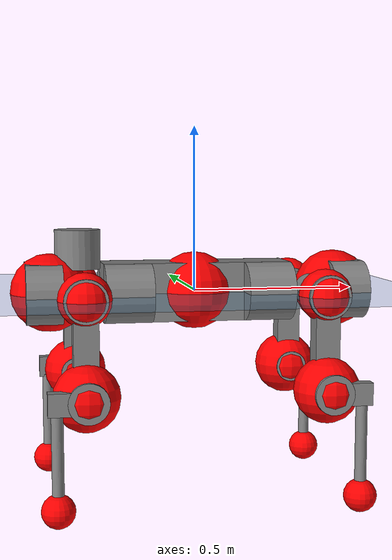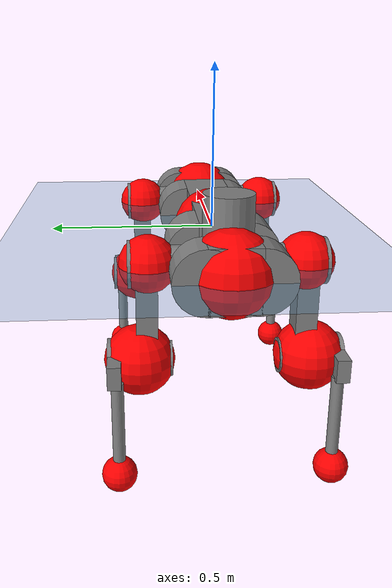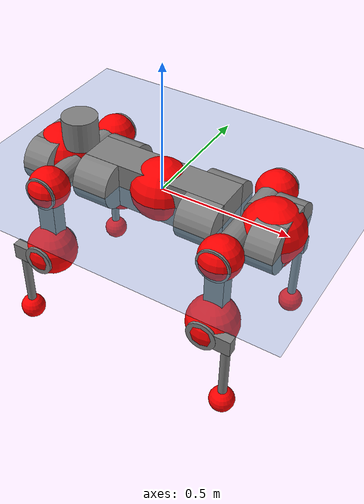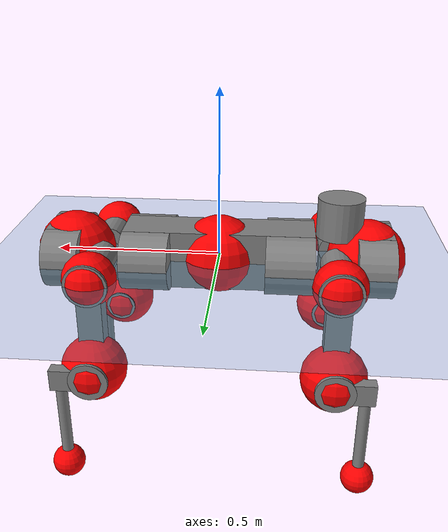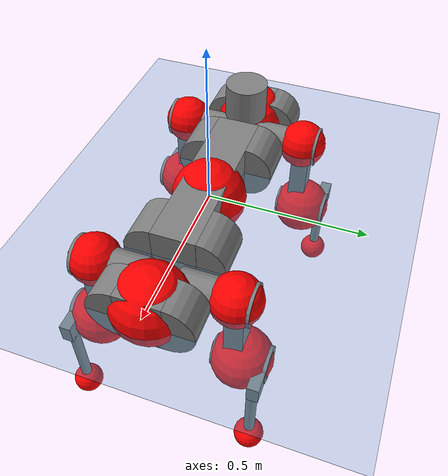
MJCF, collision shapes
<mujoco model="anymal_c">
  <compiler angle="radian" assetdir="assets" balanceinertia="true" inertiafromgeom="false"/>

  <option timestep="0.005" density="1.2" viscosity="2e-05"/>

  <size nkey="1"/>

  <visual>
    <quality shadowsize="8192"/>
    <map shadowclip="0.5"/>
  </visual>

  <default>
    <default class="/">
      <material specular="0" shininess="0.25"/>
      <geom contype="0" conaffinity="0" group="1" solref="-1000 -80"/>
      <site size="0.01 0.005 0.005" group="5"/>
      <general forcelimited="true" forcerange="-80 80" biastype="affine" gainprm="80" biasprm="0 -80 -2"/>
      <default class="anymal_c">
        <joint armature="0.01" damping="0.01" frictionloss="0.1"/>
        <default class="visual">
          <geom type="mesh" group="2"/>
          <default class="visual_zflip"/>
        </default>
        <default class="collision">
          <geom type="cylinder" group="3"/>
          <default class="foot">
            <geom size="0.03 0 0" type="sphere" condim="6" priority="1" friction="0.8 0.02 0.01" solimp="0.015 1 0.03"/>
          </default>
        </default>
      </default>
      <default class="reward_collision_sphere">
        <geom group="5" rgba="1 0 0 1"/>
      </default>
    </default>
  </default>

  <asset>
    <texture type="skybox" colorspace="auto" name="//unnamed_texture_0" builtin="gradient" rgb1="0.95 0.95 0.95" rgb2="0.95 0.95 0.95" width="100" height="600"/>
    <texture type="2d" colorspace="auto" name="texplane" builtin="checker" rgb1="0.345 0.575 0.748" rgb2="0.345 0.575 0.748" markrgb="1 1 1" width="512" height="512"/>
    <texture type="2d" colorspace="linear" name="base" file="base.png"/>
    <texture type="2d" colorspace="linear" name="top_shell" file="top_shell.png"/>
    <texture type="2d" colorspace="linear" name="bottom_shell" file="bottom_shell.png"/>
    <texture type="2d" colorspace="linear" name="remote" file="remote.png"/>
    <texture type="2d" colorspace="linear" name="hatch" file="hatch.png"/>
    <texture type="2d" colorspace="linear" name="handle" file="handle.png"/>
    <texture type="2d" colorspace="linear" name="face" file="face.png"/>
    <texture type="2d" colorspace="linear" name="battery" file="battery.png"/>
    <texture type="2d" colorspace="linear" name="lidar_cage" file="lidar_cage.png"/>
    <texture type="2d" colorspace="linear" name="depth_camera" file="depth_camera.png"/>
    <texture type="2d" colorspace="linear" name="wide_angle_camera" file="wide_angle_camera.png"/>
    <texture type="2d" colorspace="linear" name="lidar" file="lidar.png"/>
    <texture type="2d" colorspace="linear" name="drive" file="drive.png"/>
    <texture type="2d" colorspace="linear" name="hip_l" file="hip_l.png"/>
    <texture type="2d" colorspace="linear" name="shank_l" file="shank_l.png"/>
    <texture type="2d" colorspace="linear" name="foot" file="foot.png"/>
    <texture type="2d" colorspace="linear" name="thigh" file="thigh.png"/>
    <texture type="2d" colorspace="linear" name="shank_r" file="shank_r.png"/>
    <texture type="2d" colorspace="linear" name="hip_r" file="hip_r.png"/>
    <material name="MatPlane" class="/" texture="texplane" texuniform="true" texrepeat="2 2" specular="0.9" shininess="0.5"/>
    <material name="black_plastic" class="/" rgba="0.007 0.007 0.007 1"/>
    <material name="green" class="/" rgba="0.052 0.178 0.033 1"/>
    <material name="red" class="/" rgba="0.178 0.006 0.005 1"/>
    <material name="yellow" class="/" rgba="0.178 0.119 0.006 1"/>
    <material name="lwl" class="/" rgba="0.8 0.8 0.8 1"/>
    <material name="base" class="/" texture="base"/>
    <material name="top_shell" class="/" texture="top_shell"/>
    <material name="bottom_shell" class="/" texture="bottom_shell"/>
    <material name="hip_l" class="/" texture="hip_l"/>
    <material name="thigh" class="/" texture="thigh"/>
    <material name="shank_l" class="/" texture="shank_l"/>
    <material name="foot" class="/" texture="foot"/>
    <material name="hip_r" class="/" texture="hip_r"/>
    <material name="shank" class="/" texture="shank_r"/>
    <material name="hatch" class="/" texture="hatch"/>
    <material name="remote" class="/" texture="remote"/>
    <material name="handle" class="/" texture="handle"/>
    <material name="face" class="/" texture="face"/>
    <material name="depth_camera" class="/" texture="depth_camera"/>
    <material name="wide_angle_camera" class="/" texture="wide_angle_camera"/>
    <material name="battery" class="/" texture="battery"/>
    <material name="lidar_cage" class="/" texture="lidar_cage"/>
    <material name="lidar" class="/" texture="lidar"/>
    <material name="drive" class="/" texture="drive"/>
    <mesh name="base_0" class="/" file="base_0.obj"/>
    <mesh name="base_1" class="/" file="base_1.obj"/>
    <mesh name="base_2" class="/" file="base_2.obj"/>
    <mesh name="base_3" class="/" file="base_3.obj"/>
    <mesh name="base_4" class="/" file="base_4.obj"/>
    <mesh name="base_5" class="/" file="base_5.obj"/>
    <mesh name="top_shell" class="/" file="top_shell.obj"/>
    <mesh name="bottom_shell" class="/" file="bottom_shell.obj"/>
    <mesh name="remote" class="/" file="remote.obj"/>
    <mesh name="handle" class="/" file="handle.obj"/>
    <mesh name="face" class="/" file="face.obj"/>
    <mesh name="wide_angle_camera" class="/" file="wide_angle_camera.obj"/>
    <mesh name="depth_camera" class="/" file="depth_camera.obj"/>
    <mesh name="battery" class="/" file="battery.obj"/>
    <mesh name="lidar_cage" class="/" file="lidar_cage.obj"/>
    <mesh name="lidar" class="/" file="lidar.obj"/>
    <mesh name="drive" class="/" file="drive.obj"/>
    <mesh name="hip_l" class="/" file="hip_l.obj"/>
    <mesh name="thigh" class="/" file="thigh.obj"/>
    <mesh name="shank_l" class="/" file="shank_l.obj"/>
    <mesh name="foot" class="/" file="foot.obj"/>
    <mesh name="hip_r" class="/" file="hip_r.obj"/>
    <mesh name="hatch" class="/" file="hatch.obj"/>
    <mesh name="shank_r" class="/" file="shank_r.obj"/>
  </asset>

  <worldbody>
    <geom name="floor" class="/" size="100 100 0.125" type="plane" group="0" material="MatPlane"/>
    <light name="toplight_shadow" class="/" pos="0 0 5" dir="0.0990148 0.0990148 -0.990148" type="directional" ambient="0.04 0.04 0.04" diffuse="0.55 0.55 0.55" specular="0.12 0.12 0.12"/>
    <light name="toplight_fill" class="/" pos="0 0 5" dir="0.0990148 0.0990148 -0.990148" type="directional" castshadow="false" ambient="0.04 0.04 0.04" diffuse="0.3 0.3 0.3" specular="0.08 0.08 0.08"/>
    <body name="trunk" childclass="anymal_c" pos="-0.000263999 -7.95427e-05 0.00086207" quat="1 -4.11659e-05 3.37828e-05 3.07342e-05">
      <inertial pos="0.00294699 0.000146654 0.0482369" quat="0.499398 0.501268 0.500293 0.499038" mass="17.868" diaginertia="0.582533 0.608045 0.18871"/>
      <joint name="//unnamed_joint_0" type="free" armature="0" damping="0" frictionloss="0"/>
      <geom name="//unnamed_geom_1" class="visual" material="green" mesh="base_0"/>
      <geom name="//unnamed_geom_2" class="visual" material="yellow" mesh="base_1"/>
      <geom name="//unnamed_geom_3" class="visual" material="red" mesh="base_2"/>
      <geom name="//unnamed_geom_4" class="visual" material="black_plastic" mesh="base_3"/>
      <geom name="//unnamed_geom_5" class="visual" material="lwl" mesh="base_4"/>
      <geom name="//unnamed_geom_6" class="visual" material="base" mesh="base_5"/>
      <geom name="trunk_1" class="collision" size="0.285936 0.0690191 0.0887389" type="box"/>
      <geom name="trunk_2" class="collision" size="0.0887389 0.0714841" pos="0.213978 0.0698569 0" quat="0.707107 0 0.707107 0"/>
      <geom name="trunk_3" class="collision" size="0.0887389 0.0714841" pos="-0.213978 0.0698569 0" quat="0.707107 0 0.707107 0"/>
      <geom name="trunk_4" class="collision" size="0.0887389 0.0714841" pos="0.213978 -0.0698569 0" quat="0.707107 0 0.707107 0"/>
      <geom name="trunk_5" class="collision" size="0.0887389 0.0714841" pos="-0.213978 -0.0698569 0" quat="0.707107 0 0.707107 0"/>
      <geom name="//unnamed_geom_12" class="visual" material="top_shell" mesh="top_shell"/>
      <geom name="//unnamed_geom_13" class="visual" material="bottom_shell" mesh="bottom_shell"/>
      <geom name="//unnamed_geom_14" class="visual" material="remote" mesh="remote"/>
      <geom name="//unnamed_geom_15" class="visual" material="handle" mesh="handle"/>
      <geom name="//unnamed_geom_16" class="visual" pos="0.407788 0 0" quat="1 0 0 0" material="face" mesh="face"/>
      <geom name="trunk_6" class="collision" size="0.0542293 0.0690191 0.0887389" pos="0.461897 0 0" type="box"/>
      <geom name="//unnamed_geom_18" class="collision" size="0.0887389 0.0542293" pos="0.461897 0.0698569 0" quat="0.707107 0 0.707107 0"/>
      <geom name="//unnamed_geom_19" class="collision" size="0.0887389 0.0542293" pos="0.461897 -0.0698569 0" quat="0.707107 0 0.707107 0"/>
      <geom name="//unnamed_geom_20" class="visual" pos="0.454174 0 -0.0284473" quat="0.965926 0 0.258819 0" material="depth_camera" mesh="depth_camera"/>
      <geom name="//unnamed_geom_21" class="visual" pos="0.504693 0 0.0146137" material="wide_angle_camera" mesh="wide_angle_camera"/>
      <geom name="//unnamed_geom_22" class="visual_zflip" pos="-0.407788 0 0" quat="0 0 0 1" material="face" mesh="face"/>
      <geom name="trunk_7" class="collision" size="0.0542293 0.0690191 0.0887389" pos="-0.461897 0 0" quat="0 0 0 1" type="box"/>
      <geom name="//unnamed_geom_24" class="collision" size="0.0887389 0.0542293" pos="-0.461897 -0.0698569 0" quat="0 -0.707107 0 0.707107"/>
      <geom name="//unnamed_geom_25" class="collision" size="0.0887389 0.0542293" pos="-0.461897 0.0698569 0" quat="0 -0.707107 0 0.707107"/>
      <geom name="//unnamed_geom_26" class="visual" pos="-0.454174 0 -0.0284473" quat="0 -0.258819 0 0.965926" material="depth_camera" mesh="depth_camera"/>
      <geom name="//unnamed_geom_27" class="visual_zflip" pos="-0.504693 0 0.0146137" quat="0 0 0 1" material="wide_angle_camera" mesh="wide_angle_camera"/>
      <geom name="//unnamed_geom_28" class="visual" material="battery" mesh="battery"/>
      <geom name="//unnamed_geom_29" class="visual" pos="0 0.076489 0.0284164" quat="0.683013 -0.183013 0.183013 0.683013" material="depth_camera" mesh="depth_camera"/>
      <geom name="//unnamed_geom_30" class="visual" pos="0 -0.076489 0.0284164" quat="0.683013 0.183013 0.183013 -0.683013" material="depth_camera" mesh="depth_camera"/>
      <geom name="//unnamed_geom_31" class="visual" pos="-0.358106 0 0.0717508" quat="1 0 0 0" material="lidar_cage" mesh="lidar_cage"/>
      <geom name="trunk_8" class="collision" size="0.0690191 0.0591593" pos="-0.358106 0 0.130323"/>
      <geom name="//unnamed_geom_33" class="visual" pos="-0.358106 5.55881e-06 0.138816" quat="0.707107 0 0 -0.707107" material="lidar" mesh="lidar"/>
      <geom name="//unnamed_geom_34" class="visual" pos="0.295044 0.10378 3.75269e-10" quat="0.258819 0.965926 0 0" material="drive" mesh="drive"/>
      <geom name="//unnamed_geom_35" class="visual" pos="0.295044 -0.10378 -3.75269e-10" quat="0.258819 -0.965926 0 0" material="drive" mesh="drive"/>
      <geom name="//unnamed_geom_36" class="visual" pos="-0.295044 0.10378 -3.75269e-10" quat="0 0 0.965926 -0.258819" material="drive" mesh="drive"/>
      <geom name="//unnamed_geom_37" class="visual" pos="-0.295044 -0.10378 3.75269e-10" quat="0 0 -0.965926 -0.258819" material="drive" mesh="drive"/>
      <geom name="//unnamed_geom_38" class="visual" pos="0.114122 0 0.0712627" quat="1 0 0 0" material="hatch" mesh="hatch"/>
      <geom name="//unnamed_geom_39" class="reward_collision_sphere" size="0.118319"/>
      <geom name="//unnamed_geom_40" class="reward_collision_sphere" size="0.118319" pos="0.442713 0 0"/>
      <geom name="//unnamed_geom_41" class="reward_collision_sphere" size="0.118319" pos="-0.442713 0 0"/>
      <site name="imu" pos="0.242237 0.00782324 0.0438421" size="0.00985988"/>
      <camera name="track" pos="0 -1.99591 0" quat="0.707107 0.707107 0 0" mode="trackcom"/>
      <camera name="ego_camera" pos="0.442713 0 -0.039048" quat="-0.5 -0.5 0.5 0.5"/>
      <body name="LF_HIP" pos="0.295581 0.103686 -0.000442419" quat="0.258937 0.965894 -0.000119152 0.000286209">
        <inertial pos="0.0556315 -0.014376 -0.007633" quat="-0.129247 0.711405 -0.138002 0.67687" mass="2.67227" diaginertia="0.00540345 0.00486657 0.00292981"/>
        <joint name="LF_HAA" pos="0 0 0" axis="0.999999 0.00137518 0.00092663" range="-0.713108 0.47615" armature="0.00996435" damping="0.00618362" frictionloss="0.0966341"/>
        <geom name="//unnamed_geom_42" class="visual" pos="0 2.20754e-05 -3.62586e-06" quat="0.258819 -0.965926 0 0" material="hip_l" mesh="hip_l"/>
        <geom name="//unnamed_geom_43" class="visual" pos="0.05893 -0.0715848 -0.0411686" quat="0.183013 -0.683013 0.683013 0.183013" material="drive" mesh="drive"/>
        <geom name="//unnamed_geom_44" class="collision" size="0.0492994 0.0690191" pos="0.05893 -0.0119353 -0.00674067" quat="-0.353553 -0.612372 0.612372 -0.353553"/>
        <body name="LF_THIGH" pos="0.059316 -0.0736533 -0.0414297" quat="0.182828 -0.683128 0.682986 0.18287">
          <inertial pos="0.0300343 4.45634e-05 -0.239895" quat="0.993357 -0.0039073 -0.0797071 0.0829029" mass="2.90144" diaginertia="0.0278046 0.0294689 0.0036804"/>
          <joint name="LF_HFE" pos="0 0 0" axis="1 0.000432932 0.000374022" stiffness="0.00187342" range="-3.1513 3.14704" armature="0.00999835" damping="0.00746992" frictionloss="0.0999872"/>
          <geom name="//unnamed_geom_45" class="visual" pos="-0.000281512 -4.43597e-07 0" quat="0.707107 0 0 -0.707107" material="thigh" mesh="thigh"/>
          <geom name="//unnamed_geom_46" class="collision" size="0.0640892 0.0394395" pos="0.0393523 0 0" quat="0.5 0.5 -0.5 -0.5"/>
          <geom name="//unnamed_geom_47" class="collision" size="0.0369745 0.0295796 0.139334" pos="0.0295142 0 -0.137951" quat="0.707107 0 0 -0.707107" type="box"/>
          <geom name="//unnamed_geom_48" class="visual" pos="0.0986758 0 -0.278217" quat="1 0 0 0" material="drive" mesh="drive"/>
          <geom name="//unnamed_geom_49" class="collision" size="0.0492994 0.0690191" pos="0.0298093 0 -0.278217" quat="0.707107 0 0.707107 0"/>
          <geom name="//unnamed_geom_50" class="reward_collision_sphere" size="0.078879" pos="0.0245952 0 0"/>
          <body name="LF_SHANK" pos="0.0978552 0.000411682 -0.278599" quat="1 -7.95188e-05 -0.000199613 0.000130859">
            <inertial pos="0.00488955 -0.0610711 -0.0792532" quat="0.992869 -0.11689 -0.000929611 -0.0233841" mass="0.570077" diaginertia="0.00945271 0.00916621 0.000995547"/>
            <joint name="LF_KFE" pos="0 0 0" axis="1 -0.000286462 -0.000219499" range="-3.12284 3.13891" armature="0.00947977" damping="0.00959731" frictionloss="0.0942504"/>
            <geom name="//unnamed_geom_51" class="visual" pos="-9.17948e-05 -0.000489455 0" quat="0.707107 0 0 -0.707107" material="shank_l" mesh="shank_l"/>
            <geom name="LF_kfe_act" class="collision" size="0.0591593 0.0197198" pos="0.0196761 0 0" quat="0.5 0.5 -0.5 -0.5"/>
            <geom name="//unnamed_geom_53" class="collision" size="0.0566933 0.0332771 0.0187338" pos="0.0196761 -0.0573815 0" quat="0.5 0.5 -0.5 -0.5" type="box"/>
            <geom name="//unnamed_geom_54" class="visual" pos="0.0128387 -0.0879279 -0.329927" quat="0.382683 0 0 -0.92388" material="foot" mesh="foot"/>
            <geom name="LF_calf" class="collision" size="0.0172548 0.139273" pos="0.0128387 -0.0877702 -0.164963" quat="0.707107 0 0 -0.707107"/>
            <geom name="LF_foot" class="foot" size="0.0312142" pos="0.0128387 -0.0877702 -0.307962" quat="0.707107 0 0 -0.707107"/>
            <geom name="//unnamed_geom_57" class="reward_collision_sphere" size="0.0985988" pos="-0.0491903 0 0"/>
            <geom name="//unnamed_geom_58" class="reward_collision_sphere" size="0.0492994" pos="0.0128387 -0.0877702 -0.307962"/>
            <site name="LF_foot" class="foot" pos="0.0128387 -0.0877702 -0.307962" quat="0.707107 0 0 -0.707107" size="0.00985988"/>
          </body>
        </body>
      </body>
      <body name="RF_HIP" pos="0.296348 -0.104261 -4.5184e-05" quat="0.258849 -0.965918 -9.3989e-05 1.60012e-05">
        <inertial pos="0.0555719 0.0158177 -0.00844968" quat="0.13589 0.679378 0.128404 0.709571" mass="2.62073" diaginertia="0.00536628 0.00476857 0.00288471"/>
        <joint name="RF_HAA" pos="0 0 0" axis="0.999999 0.000166187 0.00162534" range="-0.491816 0.725804" armature="0.0100571" damping="0.00931947" frictionloss="0.0996793"/>
        <geom name="//unnamed_geom_59" class="visual" pos="0 -2.20752e-05 -3.62585e-06" quat="0.258819 0.965926 0 0" material="hip_r" mesh="hip_r"/>
        <geom name="//unnamed_geom_60" class="visual" pos="0.05893 0.0715848 -0.0411686" quat="0.183013 0.683013 0.683013 -0.183013" material="drive" mesh="drive"/>
        <geom name="//unnamed_geom_61" class="collision" size="0.0492994 0.0690191" pos="0.05893 0.0119353 -0.00674067" quat="-0.353553 0.612372 0.612372 0.353553"/>
        <body name="RF_THIGH" pos="0.0594699 0.072531 -0.0407042" quat="0.183181 0.682994 0.68297 -0.183074">
          <inertial pos="0.0303822 0.000197287 -0.239412" quat="0.992794 -0.00664536 -0.0797226 0.0892171" mass="2.96492" diaginertia="0.0280452 0.0295252 0.00371971"/>
          <joint name="RF_HFE" pos="0 0 0" axis="0.999999 0.00126724 -0.000536776" stiffness="0.00606912" range="-3.1328 3.12084" armature="0.00990825" damping="0.0111535" frictionloss="0.102865"/>
          <geom name="//unnamed_geom_62" class="visual" pos="-0.000281512 -4.43597e-07 0" quat="0.707107 0 0 -0.707107" material="thigh" mesh="thigh"/>
          <geom name="//unnamed_geom_63" class="collision" size="0.0640892 0.0394395" pos="0.0393523 0 0" quat="0.5 0.5 0.5 0.5"/>
          <geom name="//unnamed_geom_64" class="collision" size="0.0369745 0.0295796 0.139334" pos="0.0295142 0 -0.137951" quat="0.707107 0 0 0.707107" type="box"/>
          <geom name="//unnamed_geom_65" class="visual" pos="0.0986758 0 -0.278217" quat="1 0 0 0" material="drive" mesh="drive"/>
          <geom name="//unnamed_geom_66" class="collision" size="0.0492994 0.0690191" pos="0.0298093 0 -0.278217" quat="0.707107 0 0.707107 0"/>
          <geom name="//unnamed_geom_67" class="reward_collision_sphere" size="0.078879" pos="0.0245952 0 0"/>
          <body name="RF_SHANK" pos="0.0984433 -2.61597e-05 -0.27841" quat="1 -7.14493e-05 -0.000133191 -6.31246e-05">
            <inertial pos="0.00554084 0.0613846 -0.0784972" quat="0.993228 0.113369 -0.00425537 0.0250659" mass="0.561973" diaginertia="0.00931136 0.00920668 0.000988237"/>
            <joint name="RF_KFE" pos="0 0 0" axis="0.999999 0.00117084 -0.00123353" range="-3.12135 3.11971" armature="0.00975343" damping="0.00931159" frictionloss="0.0971977"/>
            <geom name="//unnamed_geom_68" class="visual" pos="-9.17943e-05 0.000489454 0" quat="0.707107 0 0 0.707107" material="shank" mesh="shank_r"/>
            <geom name="RF_kfe_act" class="collision" size="0.0591593 0.0197198" pos="0.0196761 0 0" quat="0.5 0.5 0.5 0.5"/>
            <geom name="//unnamed_geom_70" class="collision" size="0.0566933 0.0332771 0.0187338" pos="0.0196761 0.0573815 0" quat="0.5 0.5 0.5 0.5" type="box"/>
            <geom name="//unnamed_geom_71" class="visual" pos="0.0128387 0.0879279 -0.329927" quat="0.382683 0 0 0.92388" material="foot" mesh="foot"/>
            <geom name="RF_calf" class="collision" size="0.0172548 0.139273" pos="0.0128387 0.0877702 -0.164963" quat="0.707107 0 0 0.707107"/>
            <geom name="RF_foot" class="foot" size="0.0284376" pos="0.0128387 0.0877702 -0.307962" quat="0.707107 0 0 0.707107"/>
            <geom name="//unnamed_geom_74" class="reward_collision_sphere" size="0.0985988" pos="-0.0491903 0 0"/>
            <geom name="//unnamed_geom_75" class="reward_collision_sphere" size="0.0492994" pos="0.0128387 0.0877702 -0.307962"/>
            <site name="RF_foot" class="foot" pos="0.0128387 0.0877702 -0.307962" quat="0.707107 0 0 0.707107" size="0.00985988"/>
          </body>
        </body>
      </body>
      <body name="LH_HIP" pos="-0.294659 0.103674 9.45504e-07" quat="-6.37538e-05 -3.70163e-05 0.965876 -0.259006">
        <inertial pos="0.055444 0.0149627 -0.00839449" quat="0.138016 0.67833 0.131174 0.709658" mass="2.65328" diaginertia="0.00542125 0.00491609 0.00294239"/>
        <joint name="LH_HAA" pos="0 0 0" axis="0.999999 -0.000206972 -0.0014328" range="-0.493106 0.705863" armature="0.00994549" damping="0.0114872" frictionloss="0.0992329"/>
        <geom name="//unnamed_geom_76" class="visual" pos="0 -2.20752e-05 -3.62585e-06" quat="-0.258819 -0.965926 0 0" material="hip_r" mesh="hip_r"/>
        <geom name="//unnamed_geom_77" class="visual" pos="0.05893 0.0715848 -0.0411686" quat="0.183013 0.683013 0.683013 -0.183013" material="drive" mesh="drive"/>
        <geom name="//unnamed_geom_78" class="collision" size="0.0492994 0.0690191" pos="0.05893 0.0119353 -0.00674067" quat="-0.353553 0.612372 0.612372 0.353553"/>
        <body name="LH_THIGH" pos="0.0591867 0.0722306 -0.0410786" quat="0.182907 0.683068 0.683012 -0.182917">
          <inertial pos="0.0303612 -0.000694132 -0.239911" quat="0.992619 -0.00508203 -0.08207 0.0891453" mass="2.93871" diaginertia="0.0278824 0.029888 0.0037221"/>
          <joint name="LH_HFE" pos="0 0 0" axis="1 -0.00056426 0.000429125" range="-3.14372 3.14265" armature="0.0101775" damping="0.0113732" frictionloss="0.0989449"/>
          <geom name="//unnamed_geom_79" class="visual" pos="-0.000281512 -4.43597e-07 0" quat="0.707107 0 0 -0.707107" material="thigh" mesh="thigh"/>
          <geom name="//unnamed_geom_80" class="collision" size="0.0640892 0.0394395" pos="0.0393523 0 0" quat="0.5 0.5 -0.5 -0.5"/>
          <geom name="//unnamed_geom_81" class="collision" size="0.0369745 0.0295796 0.139334" pos="0.0295142 0 -0.137951" quat="0.707107 0 0 -0.707107" type="box"/>
          <geom name="//unnamed_geom_82" class="visual" pos="0.0986758 0 -0.278217" quat="1 0 0 0" material="drive" mesh="drive"/>
          <geom name="//unnamed_geom_83" class="collision" size="0.0492994 0.0690191" pos="0.0298093 0 -0.278217" quat="0.707107 0 0.707107 0"/>
          <geom name="//unnamed_geom_84" class="reward_collision_sphere" size="0.078879" pos="0.0245952 0 0"/>
          <body name="LH_SHANK" pos="0.099869 -0.000781204 -0.278513" quat="1 5.09891e-06 -1.41269e-05 -8.68317e-06">
            <inertial pos="0.00537822 0.0610396 -0.0788196" quat="0.99247 0.119794 3.9327e-05 0.0255558" mass="0.563301" diaginertia="0.00932022 0.00912796 0.000984272"/>
            <joint name="LH_KFE" pos="0 0 0" axis="0.999998 -0.00150393 0.00141309" range="-3.14666 3.14097" armature="0.0102109" damping="0.00780942" frictionloss="0.0942538"/>
            <geom name="//unnamed_geom_85" class="visual" pos="-9.17943e-05 0.000489454 0" quat="-0.707107 0 0 -0.707107" material="shank" mesh="shank_r"/>
            <geom name="LH_kfe_act" class="collision" size="0.0591593 0.0197198" pos="0.0196761 0 0" quat="0.5 0.5 -0.5 -0.5"/>
            <geom name="//unnamed_geom_87" class="collision" size="0.0566933 0.0332771 0.0187338" pos="0.0196761 0.0573815 0" quat="0.5 0.5 -0.5 -0.5" type="box"/>
            <geom name="//unnamed_geom_88" class="visual" pos="0.0128387 0.0879279 -0.329927" quat="-0.382683 0 0 -0.92388" material="foot" mesh="foot"/>
            <geom name="LH_calf" class="collision" size="0.0172548 0.139273" pos="0.0128387 0.0877702 -0.164963" quat="0.707107 0 0 -0.707107"/>
            <geom name="LH_foot" class="foot" size="0.0304929" pos="0.0128387 0.0877702 -0.307962" quat="0.707107 0 0 -0.707107"/>
            <geom name="//unnamed_geom_91" class="reward_collision_sphere" size="0.0985988" pos="-0.0491903 0 0"/>
            <geom name="//unnamed_geom_92" class="reward_collision_sphere" size="0.0492994" pos="0.0128387 0.0877702 -0.307962"/>
            <site name="LH_foot" class="foot" pos="0.0128387 0.0877702 -0.307962" quat="0.707107 0 0 -0.707107" size="0.00985988"/>
          </body>
        </body>
      </body>
      <body name="RH_HIP" pos="-0.294913 -0.103818 0.000412701" quat="-8.49197e-05 3.45944e-05 -0.965907 -0.258891">
        <inertial pos="0.0557455 -0.0155504 -0.00866499" quat="-0.128465 0.710303 -0.133339 0.679107" mass="2.6876" diaginertia="0.0054361 0.00490246 0.00292917"/>
        <joint name="RH_HAA" pos="0 0 0" axis="1 0.000257836 -0.000852804" stiffness="0.000876366" range="-0.714508 0.501358" armature="0.00988627" damping="0.0140575" frictionloss="0.0979068"/>
        <geom name="//unnamed_geom_93" class="visual" pos="0 2.20754e-05 -3.62586e-06" quat="-0.258819 0.965926 0 0" material="hip_l" mesh="hip_l"/>
        <geom name="//unnamed_geom_94" class="visual" pos="0.05893 -0.0715848 -0.0411686" quat="-0.183013 0.683013 -0.683013 -0.183013" material="drive" mesh="drive"/>
        <geom name="//unnamed_geom_95" class="collision" size="0.0492994 0.0690191" pos="0.05893 -0.0119353 -0.00674067" quat="0.353553 0.612372 -0.612372 0.353553"/>
        <body name="RH_THIGH" pos="0.0584555 -0.071803 -0.0407821" quat="-0.182968 0.682971 -0.683066 -0.183015">
          <inertial pos="0.0296307 -0.00051493 -0.239348" quat="0.99317 -0.00494298 -0.0805805 0.0842365" mass="2.90402" diaginertia="0.0277738 0.0293134 0.00369851"/>
          <joint name="RH_HFE" pos="0 0 0" axis="0.999999 0.00109486 0.00034367" stiffness="0.000586709" range="-3.14596 3.13937" armature="0.00996671" damping="0.00820775" frictionloss="0.0979859"/>
          <geom name="//unnamed_geom_96" class="visual" pos="-0.000281512 -4.43597e-07 0" quat="0.707107 0 0 -0.707107" material="thigh" mesh="thigh"/>
          <geom name="//unnamed_geom_97" class="collision" size="0.0640892 0.0394395" pos="0.0393523 0 0" quat="0.5 0.5 0.5 0.5"/>
          <geom name="//unnamed_geom_98" class="collision" size="0.0369745 0.0295796 0.139334" pos="0.0295142 0 -0.137951" quat="0.707107 0 0 0.707107" type="box"/>
          <geom name="//unnamed_geom_99" class="visual" pos="0.0986758 0 -0.278217" quat="1 0 0 0" material="drive" mesh="drive"/>
          <geom name="//unnamed_geom_100" class="collision" size="0.0492994 0.0690191" pos="0.0298093 0 -0.278217" quat="0.707107 0 0.707107 0"/>
          <geom name="//unnamed_geom_101" class="reward_collision_sphere" size="0.078879" pos="0.0245952 0 0"/>
          <body name="RH_SHANK" pos="0.0983367 -0.000345605 -0.277912" quat="1 0.000260184 4.79074e-05 -0.000116691">
            <inertial pos="0.00554314 -0.0610876 -0.0790537" quat="0.992901 -0.115665 -0.00046608 -0.0277261" mass="0.561359" diaginertia="0.00942345 0.00904815 0.000987489"/>
            <joint name="RH_KFE" pos="0 0 0" axis="0.99997 0.00393079 0.00668033" range="-3.12929 3.13092" armature="0.00969969" damping="0.00935838" frictionloss="0.0986221"/>
            <geom name="//unnamed_geom_102" class="visual" pos="-9.17948e-05 -0.000489455 0" quat="0.707107 0 0 -0.707107" material="shank_l" mesh="shank_l"/>
            <geom name="RH_kfe_act" class="collision" size="0.0591593 0.0197198" pos="0.0196761 0 0" quat="0.5 0.5 0.5 0.5"/>
            <geom name="//unnamed_geom_104" class="collision" size="0.0566933 0.0332771 0.0187338" pos="0.0196761 -0.0573815 0" quat="0.5 0.5 0.5 0.5" type="box"/>
            <geom name="//unnamed_geom_105" class="visual" pos="0.0128387 -0.0879279 -0.329927" quat="0.382683 0 0 -0.92388" material="foot" mesh="foot"/>
            <geom name="RH_calf" class="collision" size="0.0172548 0.139273" pos="0.0128387 -0.0877702 -0.164963" quat="0.707107 0 0 0.707107"/>
            <geom name="RH_foot" class="foot" size="0.0280151" pos="0.0128387 -0.0877702 -0.307962" quat="0.707107 0 0 0.707107"/>
            <geom name="//unnamed_geom_108" class="reward_collision_sphere" size="0.0985988" pos="-0.0491903 0 0"/>
            <geom name="//unnamed_geom_109" class="reward_collision_sphere" size="0.0492994" pos="0.0128387 -0.0877702 -0.307962"/>
            <site name="RH_foot" class="foot" pos="0.0128387 -0.0877702 -0.307962" quat="0.707107 0 0 0.707107" size="0.00985988"/>
          </body>
        </body>
      </body>
    </body>
  </worldbody>

  <contact>
    <pair class="/" geom1="floor" geom2="LF_foot" name="//unnamed_contact_0"/>
    <pair class="/" geom1="floor" geom2="RF_foot" name="//unnamed_contact_1"/>
    <pair class="/" geom1="floor" geom2="LH_foot" name="//unnamed_contact_2"/>
    <pair class="/" geom1="floor" geom2="RH_foot" name="//unnamed_contact_3"/>
  </contact>

  <actuator>
    <general name="LF_HAA" class="/" joint="LF_HAA" forcerange="-78.9356 78.9356" gainprm="81.371" biasprm="0 -81.371 -1.96551"/>
    <general name="LF_HFE" class="/" joint="LF_HFE" forcerange="-81.128 81.128" gainprm="81.371" biasprm="0 -81.371 -1.96551"/>
    <general name="LF_KFE" class="/" joint="LF_KFE" forcerange="-78.3974 78.3974" gainprm="81.371" biasprm="0 -81.371 -1.96551"/>
    <general name="RF_HAA" class="/" joint="RF_HAA" forcerange="-81.9813 81.9813" gainprm="81.371" biasprm="0 -81.371 -1.96551"/>
    <general name="RF_HFE" class="/" joint="RF_HFE" forcerange="-77.783 77.783" gainprm="81.371" biasprm="0 -81.371 -1.96551"/>
    <general name="RF_KFE" class="/" joint="RF_KFE" forcerange="-80.3821 80.3821" gainprm="81.371" biasprm="0 -81.371 -1.96551"/>
    <general name="LH_HAA" class="/" joint="LH_HAA" forcerange="-79.3072 79.3072" gainprm="81.371" biasprm="0 -81.371 -1.96551"/>
    <general name="LH_HFE" class="/" joint="LH_HFE" forcerange="-80.723 80.723" gainprm="81.371" biasprm="0 -81.371 -1.96551"/>
    <general name="LH_KFE" class="/" joint="LH_KFE" forcerange="-79.4198 79.4198" gainprm="81.371" biasprm="0 -81.371 -1.96551"/>
    <general name="RH_HAA" class="/" joint="RH_HAA" forcerange="-78.2503 78.2503" gainprm="81.371" biasprm="0 -81.371 -1.96551"/>
    <general name="RH_HFE" class="/" joint="RH_HFE" forcerange="-78.5453 78.5453" gainprm="81.371" biasprm="0 -81.371 -1.96551"/>
    <general name="RH_KFE" class="/" joint="RH_KFE" forcerange="-77.3902 77.3902" gainprm="81.371" biasprm="0 -81.371 -1.96551"/>
  </actuator>

  <sensor>
    <gyro site="imu" name="imu_angular_velocity"/>
    <velocimeter site="imu" name="imu_linear_velocity"/>
    <framelinvel objtype="site" objname="LF_foot" name="LF_foot_global_linear_velocity"/>
    <framelinvel objtype="site" objname="RF_foot" name="RF_foot_global_linear_velocity"/>
    <framelinvel objtype="site" objname="LH_foot" name="LH_foot_global_linear_velocity"/>
    <framelinvel objtype="site" objname="RH_foot" name="RH_foot_global_linear_velocity"/>
  </sensor>

  <keyframe>
    <key name="home" qpos="0 0 0.55 1 0 0 0 0 0.4 -0.8 0 -0.4 0.8 0 -0.4 0.8 0 0.4 -0.8"/>
  </keyframe>
</mujoco>
